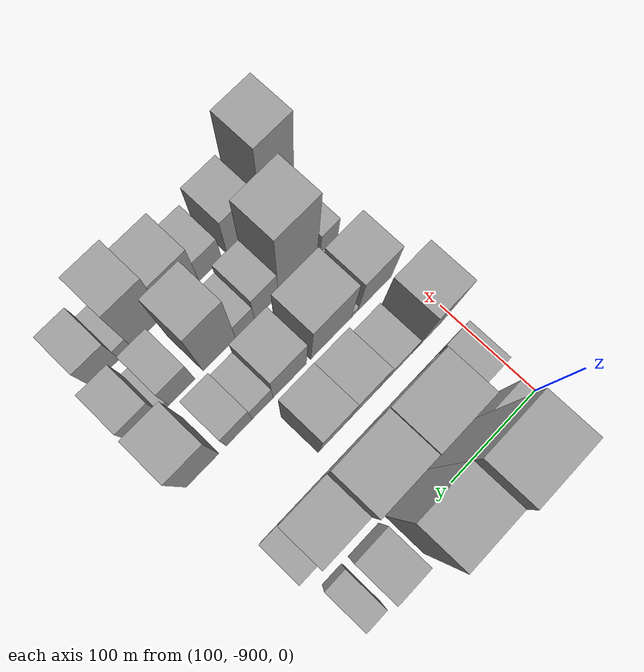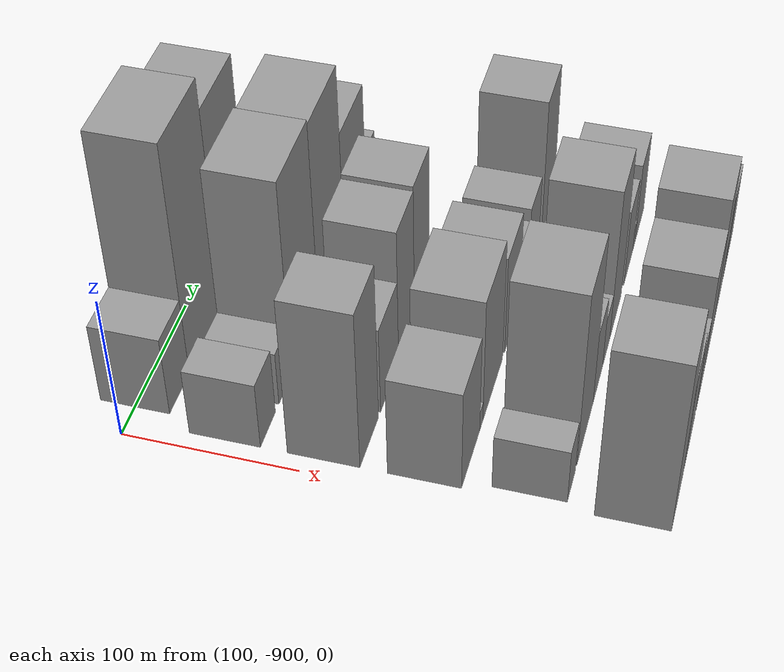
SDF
<sdf version="1.6">
 <world name="default">
  <model name="building_1">
   <static>1</static>
   <pose>100.0000 -864.7257 0 0.000000 0.000000 0.000000</pose>
   <link name="link">
    <pose>0 0 28.50 0 0 0</pose>
    <collision name="collision"><geometry><box><size>40.0000 30.5486 57.0000</size></box></geometry></collision>
    <visual name="visual">
     <cast_shadows>0</cast_shadows>
     <geometry><box><size>40.0000 30.5486 57.0000</size></box></geometry>
     <material>
      <script>
       <uri>model://grey_wall/materials/scripts</uri>
       <uri>model://grey_wall/materials/textures</uri>
       <name>vrc/grey_wall</name>
      </script>
     </material>
    </visual>
   </link>
  </model>
  <model name="building_2">
   <static>1</static>
   <pose>100.0000 -822.4458 0 0.000000 0.000000 0.000000</pose>
   <link name="link">
    <pose>0 0 82.50 0 0 0</pose>
    <collision name="collision"><geometry><box><size>40.0000 54.0111 165.0000</size></box></geometry></collision>
    <visual name="visual">
     <cast_shadows>0</cast_shadows>
     <geometry><box><size>40.0000 54.0111 165.0000</size></box></geometry>
     <material>
      <script>
       <uri>model://grey_wall/materials/scripts</uri>
       <uri>model://grey_wall/materials/textures</uri>
       <name>vrc/grey_wall</name>
      </script>
     </material>
    </visual>
   </link>
  </model>
  <model name="building_3">
   <static>1</static>
   <pose>100.0000 -770.7821 0 0.000000 0.000000 0.000000</pose>
   <link name="link">
    <pose>0 0 72.00 0 0 0</pose>
    <collision name="collision"><geometry><box><size>40.0000 49.3164 144.0000</size></box></geometry></collision>
    <visual name="visual">
     <cast_shadows>0</cast_shadows>
     <geometry><box><size>40.0000 49.3164 144.0000</size></box></geometry>
     <material>
      <script>
       <uri>model://grey_wall/materials/scripts</uri>
       <uri>model://grey_wall/materials/textures</uri>
       <name>vrc/grey_wall</name>
      </script>
     </material>
    </visual>
   </link>
  </model>
  <model name="building_4">
   <static>1</static>
   <pose>100.0000 -721.9472 0 0.000000 0.000000 0.000000</pose>
   <link name="link">
    <pose>0 0 30.00 0 0 0</pose>
    <collision name="collision"><geometry><box><size>40.0000 34.3533 60.0000</size></box></geometry></collision>
    <visual name="visual">
     <cast_shadows>0</cast_shadows>
     <geometry><box><size>40.0000 34.3533 60.0000</size></box></geometry>
     <material>
      <script>
       <uri>model://grey_wall/materials/scripts</uri>
       <uri>model://grey_wall/materials/textures</uri>
       <name>vrc/grey_wall</name>
      </script>
     </material>
    </visual>
   </link>
  </model>
  <model name="building_5">
   <static>1</static>
   <pose>100.0000 -687.0318 0 0.000000 0.000000 0.000000</pose>
   <link name="link">
    <pose>0 0 21.00 0 0 0</pose>
    <collision name="collision"><geometry><box><size>40.0000 21.4775 42.0000</size></box></geometry></collision>
    <visual name="visual">
     <cast_shadows>0</cast_shadows>
     <geometry><box><size>40.0000 21.4775 42.0000</size></box></geometry>
     <material>
      <script>
       <uri>model://grey_wall/materials/scripts</uri>
       <uri>model://grey_wall/materials/textures</uri>
       <name>vrc/grey_wall</name>
      </script>
     </material>
    </visual>
   </link>
  </model>
  <model name="building_52">
   <static>1</static>
   <pose>155.0000 -877.2453 0 0.000000 0.000000 0.000000</pose>
   <link name="link">
    <pose>0 0 24.00 0 0 0</pose>
    <collision name="collision"><geometry><box><size>40.0000 25.5093 48.0000</size></box></geometry></collision>
    <visual name="visual">
     <cast_shadows>0</cast_shadows>
     <geometry><box><size>40.0000 25.5093 48.0000</size></box></geometry>
     <material>
      <script>
       <uri>model://grey_wall/materials/scripts</uri>
       <uri>model://grey_wall/materials/textures</uri>
       <name>vrc/grey_wall</name>
      </script>
     </material>
    </visual>
   </link>
  </model>
  <model name="building_53">
   <static>1</static>
   <pose>155.0000 -847.4189 0 0.000000 0.000000 0.000000</pose>
   <link name="link">
    <pose>0 0 19.50 0 0 0</pose>
    <collision name="collision"><geometry><box><size>40.0000 22.1435 39.0000</size></box></geometry></collision>
    <visual name="visual">
     <cast_shadows>0</cast_shadows>
     <geometry><box><size>40.0000 22.1435 39.0000</size></box></geometry>
     <material>
      <script>
       <uri>model://grey_wall/materials/scripts</uri>
       <uri>model://grey_wall/materials/textures</uri>
       <name>vrc/grey_wall</name>
      </script>
     </material>
    </visual>
   </link>
  </model>
  <model name="building_54">
   <static>1</static>
   <pose>155.0000 -811.0067 0 0.000000 0.000000 0.000000</pose>
   <link name="link">
    <pose>0 0 70.50 0 0 0</pose>
    <collision name="collision"><geometry><box><size>40.0000 50.6810 141.0000</size></box></geometry></collision>
    <visual name="visual">
     <cast_shadows>0</cast_shadows>
     <geometry><box><size>40.0000 50.6810 141.0000</size></box></geometry>
     <material>
      <script>
       <uri>model://grey_wall/materials/scripts</uri>
       <uri>model://grey_wall/materials/textures</uri>
       <name>vrc/grey_wall</name>
      </script>
     </material>
    </visual>
   </link>
  </model>
  <model name="building_55">
   <static>1</static>
   <pose>155.0000 -759.9130 0 0.000000 0.000000 0.000000</pose>
   <link name="link">
    <pose>0 0 69.00 0 0 0</pose>
    <collision name="collision"><geometry><box><size>40.0000 51.5064 138.0000</size></box></geometry></collision>
    <visual name="visual">
     <cast_shadows>0</cast_shadows>
     <geometry><box><size>40.0000 51.5064 138.0000</size></box></geometry>
     <material>
      <script>
       <uri>model://grey_wall/materials/scripts</uri>
       <uri>model://grey_wall/materials/textures</uri>
       <name>vrc/grey_wall</name>
      </script>
     </material>
    </visual>
   </link>
  </model>
  <model name="building_56">
   <static>1</static>
   <pose>155.0000 -711.0327 0 0.000000 0.000000 0.000000</pose>
   <link name="link">
    <pose>0 0 45.00 0 0 0</pose>
    <collision name="collision"><geometry><box><size>40.0000 46.2541 90.0000</size></box></geometry></collision>
    <visual name="visual">
     <cast_shadows>0</cast_shadows>
     <geometry><box><size>40.0000 46.2541 90.0000</size></box></geometry>
     <material>
      <script>
       <uri>model://grey_wall/materials/scripts</uri>
       <uri>model://grey_wall/materials/textures</uri>
       <name>vrc/grey_wall</name>
      </script>
     </material>
    </visual>
   </link>
  </model>
  <model name="building_57">
   <static>1</static>
   <pose>155.0000 -677.4750 0 0.000000 0.000000 0.000000</pose>
   <link name="link">
    <pose>0 0 19.50 0 0 0</pose>
    <collision name="collision"><geometry><box><size>40.0000 20.8614 39.0000</size></box></geometry></collision>
    <visual name="visual">
     <cast_shadows>0</cast_shadows>
     <geometry><box><size>40.0000 20.8614 39.0000</size></box></geometry>
     <material>
      <script>
       <uri>model://grey_wall/materials/scripts</uri>
       <uri>model://grey_wall/materials/textures</uri>
       <name>vrc/grey_wall</name>
      </script>
     </material>
    </visual>
   </link>
  </model>
  <model name="building_102">
   <static>1</static>
   <pose>210.0000 -872.0257 0 0.000000 0.000000 0.000000</pose>
   <link name="link">
    <pose>0 0 57.00 0 0 0</pose>
    <collision name="collision"><geometry><box><size>40.0000 35.9486 114.0000</size></box></geometry></collision>
    <visual name="visual">
     <cast_shadows>0</cast_shadows>
     <geometry><box><size>40.0000 35.9486 114.0000</size></box></geometry>
     <material>
      <script>
       <uri>model://grey_wall/materials/scripts</uri>
       <uri>model://grey_wall/materials/textures</uri>
       <name>vrc/grey_wall</name>
      </script>
     </material>
    </visual>
   </link>
  </model>
  <model name="building_103">
   <static>1</static>
   <pose>210.0000 -831.6804 0 0.000000 0.000000 0.000000</pose>
   <link name="link">
    <pose>0 0 31.50 0 0 0</pose>
    <collision name="collision"><geometry><box><size>40.0000 36.7421 63.0000</size></box></geometry></collision>
    <visual name="visual">
     <cast_shadows>0</cast_shadows>
     <geometry><box><size>40.0000 36.7421 63.0000</size></box></geometry>
     <material>
      <script>
       <uri>model://grey_wall/materials/scripts</uri>
       <uri>model://grey_wall/materials/textures</uri>
       <name>vrc/grey_wall</name>
      </script>
     </material>
    </visual>
   </link>
  </model>
  <model name="building_104">
   <static>1</static>
   <pose>210.0000 -796.4496 0 0.000000 0.000000 0.000000</pose>
   <link name="link">
    <pose>0 0 49.50 0 0 0</pose>
    <collision name="collision"><geometry><box><size>40.0000 33.7194 99.0000</size></box></geometry></collision>
    <visual name="visual">
     <cast_shadows>0</cast_shadows>
     <geometry><box><size>40.0000 33.7194 99.0000</size></box></geometry>
     <material>
      <script>
       <uri>model://grey_wall/materials/scripts</uri>
       <uri>model://grey_wall/materials/textures</uri>
       <name>vrc/grey_wall</name>
      </script>
     </material>
    </visual>
   </link>
  </model>
  <model name="building_105">
   <static>1</static>
   <pose>210.0000 -762.6803 0 0.000000 0.000000 0.000000</pose>
   <link name="link">
    <pose>0 0 51.00 0 0 0</pose>
    <collision name="collision"><geometry><box><size>40.0000 33.8191 102.0000</size></box></geometry></collision>
    <visual name="visual">
     <cast_shadows>0</cast_shadows>
     <geometry><box><size>40.0000 33.8191 102.0000</size></box></geometry>
     <material>
      <script>
       <uri>model://grey_wall/materials/scripts</uri>
       <uri>model://grey_wall/materials/textures</uri>
       <name>vrc/grey_wall</name>
      </script>
     </material>
    </visual>
   </link>
  </model>
  <model name="building_154">
   <static>1</static>
   <pose>265.0000 -869.8966 0 0.000000 0.000000 0.000000</pose>
   <link name="link">
    <pose>0 0 36.00 0 0 0</pose>
    <collision name="collision"><geometry><box><size>40.0000 40.2068 72.0000</size></box></geometry></collision>
    <visual name="visual">
     <cast_shadows>0</cast_shadows>
     <geometry><box><size>40.0000 40.2068 72.0000</size></box></geometry>
     <material>
      <script>
       <uri>model://grey_wall/materials/scripts</uri>
       <uri>model://grey_wall/materials/textures</uri>
       <name>vrc/grey_wall</name>
      </script>
     </material>
    </visual>
   </link>
  </model>
  <model name="building_155">
   <static>1</static>
   <pose>265.0000 -846.0512 0 0.000000 0.000000 0.000000</pose>
   <link name="link">
    <pose>0 0 7.50 0 0 0</pose>
    <collision name="collision"><geometry><box><size>40.0000 7.4838 15.0000</size></box></geometry></collision>
    <visual name="visual">
     <cast_shadows>0</cast_shadows>
     <geometry><box><size>40.0000 7.4838 15.0000</size></box></geometry>
     <material>
      <script>
       <uri>model://grey_wall/materials/scripts</uri>
       <uri>model://grey_wall/materials/textures</uri>
       <name>vrc/grey_wall</name>
      </script>
     </material>
    </visual>
   </link>
  </model>
  <model name="building_156">
   <static>1</static>
   <pose>265.0000 -818.6921 0 0.000000 0.000000 0.000000</pose>
   <link name="link">
    <pose>0 0 45.00 0 0 0</pose>
    <collision name="collision"><geometry><box><size>40.0000 47.2345 90.0000</size></box></geometry></collision>
    <visual name="visual">
     <cast_shadows>0</cast_shadows>
     <geometry><box><size>40.0000 47.2345 90.0000</size></box></geometry>
     <material>
      <script>
       <uri>model://grey_wall/materials/scripts</uri>
       <uri>model://grey_wall/materials/textures</uri>
       <name>vrc/grey_wall</name>
      </script>
     </material>
    </visual>
   </link>
  </model>
  <model name="building_157">
   <static>1</static>
   <pose>265.0000 -771.1643 0 0.000000 0.000000 0.000000</pose>
   <link name="link">
    <pose>0 0 36.00 0 0 0</pose>
    <collision name="collision"><geometry><box><size>40.0000 37.8212 72.0000</size></box></geometry></collision>
    <visual name="visual">
     <cast_shadows>0</cast_shadows>
     <geometry><box><size>40.0000 37.8212 72.0000</size></box></geometry>
     <material>
      <script>
       <uri>model://grey_wall/materials/scripts</uri>
       <uri>model://grey_wall/materials/textures</uri>
       <name>vrc/grey_wall</name>
      </script>
     </material>
    </visual>
   </link>
  </model>
  <model name="building_158">
   <static>1</static>
   <pose>265.0000 -740.4808 0 0.000000 0.000000 0.000000</pose>
   <link name="link">
    <pose>0 0 22.50 0 0 0</pose>
    <collision name="collision"><geometry><box><size>40.0000 23.5458 45.0000</size></box></geometry></collision>
    <visual name="visual">
     <cast_shadows>0</cast_shadows>
     <geometry><box><size>40.0000 23.5458 45.0000</size></box></geometry>
     <material>
      <script>
       <uri>model://grey_wall/materials/scripts</uri>
       <uri>model://grey_wall/materials/textures</uri>
       <name>vrc/grey_wall</name>
      </script>
     </material>
    </visual>
   </link>
  </model>
  <model name="building_159">
   <static>1</static>
   <pose>265.0000 -714.3545 0 0.000000 0.000000 0.000000</pose>
   <link name="link">
    <pose>0 0 27.00 0 0 0</pose>
    <collision name="collision"><geometry><box><size>40.0000 28.7067 54.0000</size></box></geometry></collision>
    <visual name="visual">
     <cast_shadows>0</cast_shadows>
     <geometry><box><size>40.0000 28.7067 54.0000</size></box></geometry>
     <material>
      <script>
       <uri>model://grey_wall/materials/scripts</uri>
       <uri>model://grey_wall/materials/textures</uri>
       <name>vrc/grey_wall</name>
      </script>
     </material>
    </visual>
   </link>
  </model>
  <model name="building_160">
   <static>1</static>
   <pose>265.0000 -674.1225 0 0.000000 0.000000 0.000000</pose>
   <link name="link">
    <pose>0 0 51.00 0 0 0</pose>
    <collision name="collision"><geometry><box><size>40.0000 35.7574 102.0000</size></box></geometry></collision>
    <visual name="visual">
     <cast_shadows>0</cast_shadows>
     <geometry><box><size>40.0000 35.7574 102.0000</size></box></geometry>
     <material>
      <script>
       <uri>model://grey_wall/materials/scripts</uri>
       <uri>model://grey_wall/materials/textures</uri>
       <name>vrc/grey_wall</name>
      </script>
     </material>
    </visual>
   </link>
  </model>
  <model name="building_201">
   <static>1</static>
   <pose>320.0000 -874.5870 0 0.000000 0.000000 0.000000</pose>
   <link name="link">
    <pose>0 0 19.50 0 0 0</pose>
    <collision name="collision"><geometry><box><size>40.0000 20.8260 39.0000</size></box></geometry></collision>
    <visual name="visual">
     <cast_shadows>0</cast_shadows>
     <geometry><box><size>40.0000 20.8260 39.0000</size></box></geometry>
     <material>
      <script>
       <uri>model://grey_wall/materials/scripts</uri>
       <uri>model://grey_wall/materials/textures</uri>
       <name>vrc/grey_wall</name>
      </script>
     </material>
    </visual>
   </link>
  </model>
  <model name="building_202">
   <static>1</static>
   <pose>320.0000 -837.5990 0 0.000000 0.000000 0.000000</pose>
   <link name="link">
    <pose>0 0 63.00 0 0 0</pose>
    <collision name="collision"><geometry><box><size>40.0000 45.1499 126.0000</size></box></geometry></collision>
    <visual name="visual">
     <cast_shadows>0</cast_shadows>
     <geometry><box><size>40.0000 45.1499 126.0000</size></box></geometry>
     <material>
      <script>
       <uri>model://grey_wall/materials/scripts</uri>
       <uri>model://grey_wall/materials/textures</uri>
       <name>vrc/grey_wall</name>
      </script>
     </material>
    </visual>
   </link>
  </model>
  <model name="building_203">
   <static>1</static>
   <pose>320.0000 -801.2038 0 0.000000 0.000000 0.000000</pose>
   <link name="link">
    <pose>0 0 27.00 0 0 0</pose>
    <collision name="collision"><geometry><box><size>40.0000 27.6406 54.0000</size></box></geometry></collision>
    <visual name="visual">
     <cast_shadows>0</cast_shadows>
     <geometry><box><size>40.0000 27.6406 54.0000</size></box></geometry>
     <material>
      <script>
       <uri>model://grey_wall/materials/scripts</uri>
       <uri>model://grey_wall/materials/textures</uri>
       <name>vrc/grey_wall</name>
      </script>
     </material>
    </visual>
   </link>
  </model>
  <model name="building_204">
   <static>1</static>
   <pose>320.0000 -776.6204 0 0.000000 0.000000 0.000000</pose>
   <link name="link">
    <pose>0 0 18.00 0 0 0</pose>
    <collision name="collision"><geometry><box><size>40.0000 21.5260 36.0000</size></box></geometry></collision>
    <visual name="visual">
     <cast_shadows>0</cast_shadows>
     <geometry><box><size>40.0000 21.5260 36.0000</size></box></geometry>
     <material>
      <script>
       <uri>model://grey_wall/materials/scripts</uri>
       <uri>model://grey_wall/materials/textures</uri>
       <name>vrc/grey_wall</name>
      </script>
     </material>
    </visual>
   </link>
  </model>
  <model name="building_205">
   <static>1</static>
   <pose>320.0000 -747.6105 0 0.000000 0.000000 0.000000</pose>
   <link name="link">
    <pose>0 0 55.50 0 0 0</pose>
    <collision name="collision"><geometry><box><size>40.0000 36.4938 111.0000</size></box></geometry></collision>
    <visual name="visual">
     <cast_shadows>0</cast_shadows>
     <geometry><box><size>40.0000 36.4938 111.0000</size></box></geometry>
     <material>
      <script>
       <uri>model://grey_wall/materials/scripts</uri>
       <uri>model://grey_wall/materials/textures</uri>
       <name>vrc/grey_wall</name>
      </script>
     </material>
    </visual>
   </link>
  </model>
  <model name="building_206">
   <static>1</static>
   <pose>320.0000 -705.8832 0 0.000000 0.000000 0.000000</pose>
   <link name="link">
    <pose>0 0 28.50 0 0 0</pose>
    <collision name="collision"><geometry><box><size>40.0000 28.9608 57.0000</size></box></geometry></collision>
    <visual name="visual">
     <cast_shadows>0</cast_shadows>
     <geometry><box><size>40.0000 28.9608 57.0000</size></box></geometry>
     <material>
      <script>
       <uri>model://grey_wall/materials/scripts</uri>
       <uri>model://grey_wall/materials/textures</uri>
       <name>vrc/grey_wall</name>
      </script>
     </material>
    </visual>
   </link>
  </model>
  <model name="building_207">
   <static>1</static>
   <pose>320.0000 -687.2575 0 0.000000 0.000000 0.000000</pose>
   <link name="link">
    <pose>0 0 9.00 0 0 0</pose>
    <collision name="collision"><geometry><box><size>40.0000 8.2906 18.0000</size></box></geometry></collision>
    <visual name="visual">
     <cast_shadows>0</cast_shadows>
     <geometry><box><size>40.0000 8.2906 18.0000</size></box></geometry>
     <material>
      <script>
       <uri>model://grey_wall/materials/scripts</uri>
       <uri>model://grey_wall/materials/textures</uri>
       <name>vrc/grey_wall</name>
      </script>
     </material>
    </visual>
   </link>
  </model>
  <model name="building_208">
   <static>1</static>
   <pose>320.0000 -667.7452 0 0.000000 0.000000 0.000000</pose>
   <link name="link">
    <pose>0 0 30.00 0 0 0</pose>
    <collision name="collision"><geometry><box><size>40.0000 30.7339 60.0000</size></box></geometry></collision>
    <visual name="visual">
     <cast_shadows>0</cast_shadows>
     <geometry><box><size>40.0000 30.7339 60.0000</size></box></geometry>
     <material>
      <script>
       <uri>model://grey_wall/materials/scripts</uri>
       <uri>model://grey_wall/materials/textures</uri>
       <name>vrc/grey_wall</name>
      </script>
     </material>
    </visual>
   </link>
  </model>
  <model name="building_252">
   <static>1</static>
   <pose>375.0000 -870.8621 0 0.000000 0.000000 0.000000</pose>
   <link name="link">
    <pose>0 0 61.50 0 0 0</pose>
    <collision name="collision"><geometry><box><size>40.0000 38.2757 123.0000</size></box></geometry></collision>
    <visual name="visual">
     <cast_shadows>0</cast_shadows>
     <geometry><box><size>40.0000 38.2757 123.0000</size></box></geometry>
     <material>
      <script>
       <uri>model://grey_wall/materials/scripts</uri>
       <uri>model://grey_wall/materials/textures</uri>
       <name>vrc/grey_wall</name>
      </script>
     </material>
    </visual>
   </link>
  </model>
  <model name="building_253">
   <static>1</static>
   <pose>375.0000 -829.6356 0 0.000000 0.000000 0.000000</pose>
   <link name="link">
    <pose>0 0 33.00 0 0 0</pose>
    <collision name="collision"><geometry><box><size>40.0000 36.1774 66.0000</size></box></geometry></collision>
    <visual name="visual">
     <cast_shadows>0</cast_shadows>
     <geometry><box><size>40.0000 36.1774 66.0000</size></box></geometry>
     <material>
      <script>
       <uri>model://grey_wall/materials/scripts</uri>
       <uri>model://grey_wall/materials/textures</uri>
       <name>vrc/grey_wall</name>
      </script>
     </material>
    </visual>
   </link>
  </model>
  <model name="building_254">
   <static>1</static>
   <pose>375.0000 -792.3854 0 0.000000 0.000000 0.000000</pose>
   <link name="link">
    <pose>0 0 22.50 0 0 0</pose>
    <collision name="collision"><geometry><box><size>40.0000 26.3230 45.0000</size></box></geometry></collision>
    <visual name="visual">
     <cast_shadows>0</cast_shadows>
     <geometry><box><size>40.0000 26.3230 45.0000</size></box></geometry>
     <material>
      <script>
       <uri>model://grey_wall/materials/scripts</uri>
       <uri>model://grey_wall/materials/textures</uri>
       <name>vrc/grey_wall</name>
      </script>
     </material>
    </visual>
   </link>
  </model>
  <model name="building_255">
   <static>1</static>
   <pose>375.0000 -760.0310 0 0.000000 0.000000 0.000000</pose>
   <link name="link">
    <pose>0 0 37.50 0 0 0</pose>
    <collision name="collision"><geometry><box><size>40.0000 38.3857 75.0000</size></box></geometry></collision>
    <visual name="visual">
     <cast_shadows>0</cast_shadows>
     <geometry><box><size>40.0000 38.3857 75.0000</size></box></geometry>
     <material>
      <script>
       <uri>model://grey_wall/materials/scripts</uri>
       <uri>model://grey_wall/materials/textures</uri>
       <name>vrc/grey_wall</name>
      </script>
     </material>
    </visual>
   </link>
  </model>
  <model name="building_256">
   <static>1</static>
   <pose>375.0000 -722.2607 0 0.000000 0.000000 0.000000</pose>
   <link name="link">
    <pose>0 0 48.00 0 0 0</pose>
    <collision name="collision"><geometry><box><size>40.0000 37.1551 96.0000</size></box></geometry></collision>
    <visual name="visual">
     <cast_shadows>0</cast_shadows>
     <geometry><box><size>40.0000 37.1551 96.0000</size></box></geometry>
     <material>
      <script>
       <uri>model://grey_wall/materials/scripts</uri>
       <uri>model://grey_wall/materials/textures</uri>
       <name>vrc/grey_wall</name>
      </script>
     </material>
    </visual>
   </link>
  </model>
  <model name="building_257">
   <static>1</static>
   <pose>375.0000 -696.9505 0 0.000000 0.000000 0.000000</pose>
   <link name="link">
    <pose>0 0 13.50 0 0 0</pose>
    <collision name="collision"><geometry><box><size>40.0000 13.4652 27.0000</size></box></geometry></collision>
    <visual name="visual">
     <cast_shadows>0</cast_shadows>
     <geometry><box><size>40.0000 13.4652 27.0000</size></box></geometry>
     <material>
      <script>
       <uri>model://grey_wall/materials/scripts</uri>
       <uri>model://grey_wall/materials/textures</uri>
       <name>vrc/grey_wall</name>
      </script>
     </material>
    </visual>
   </link>
  </model>
  <model name="building_258">
   <static>1</static>
   <pose>375.0000 -674.9305 0 0.000000 0.000000 0.000000</pose>
   <link name="link">
    <pose>0 0 27.00 0 0 0</pose>
    <collision name="collision"><geometry><box><size>40.0000 30.5749 54.0000</size></box></geometry></collision>
    <visual name="visual">
     <cast_shadows>0</cast_shadows>
     <geometry><box><size>40.0000 30.5749 54.0000</size></box></geometry>
     <material>
      <script>
       <uri>model://grey_wall/materials/scripts</uri>
       <uri>model://grey_wall/materials/textures</uri>
       <name>vrc/grey_wall</name>
      </script>
     </material>
    </visual>
   </link>
  </model>
 </world>
</sdf>
